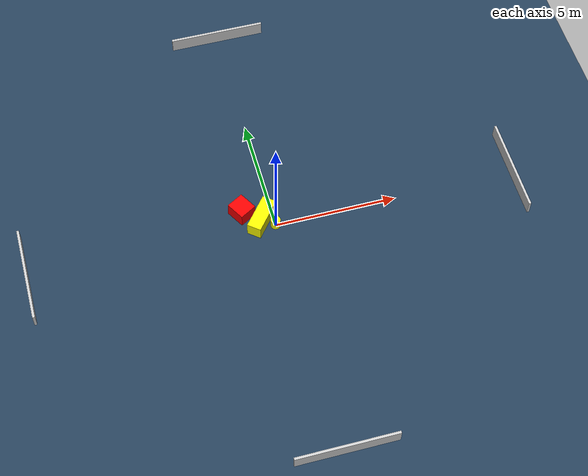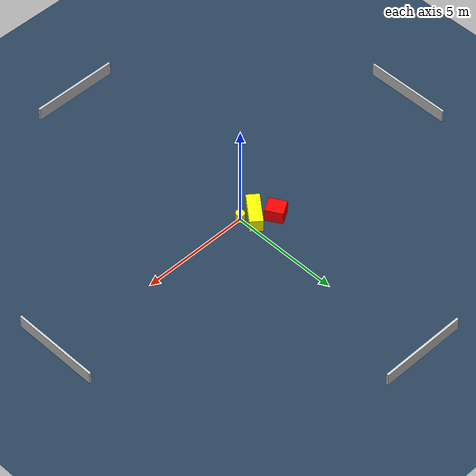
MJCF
<?xml version="1.0" ?>
<mujoco model="generated_environment">
  <option timestep="0.01" integrator="RK4" cone="elliptic"/>
  <default>
    <geom density="1"/>
  </default>
  <asset>
    <texture builtin="gradient" height="3072" name="skybox" rgb1="0.3 0.5 0.7" rgb2="0 0 0" type="skybox" width="512"/>
    <texture builtin="checker" height="300" name="groundplane" rgb1="0.2 0.3 0.4" rgb2="0.1 0.2 0.3" type="2d" width="300"/>
    <material name="groundplane" reflectance="0.2" texrepeat="5 5" texture="groundplane"/>
  </asset>
  <worldbody>
    <light dir="0 0 -1" directional="true" pos="0 0 1.5"/>
    <geom condim="3" friction="0.5 0.005 0.001" material="groundplane" name="floor" pos="0 0 0" size="0 0 0.05" type="plane"/>
    <body name="walls">
      <geom name="wall_1" condim="4" pos="-10.0 0.0 0.3" rgba="0.800000011920929 0.800000011920929 0.800000011920929 1.0" size="0.05 2.0 0.3" type="box"/>
      <geom name="wall_2" condim="4" pos="10.0 0.0 0.3" rgba="0.800000011920929 0.800000011920929 0.800000011920929 1.0" size="0.05 2.0 0.3" type="box"/>
      <geom name="wall_3" condim="4" pos="0.0 -10.0 0.3" rgba="0.800000011920929 0.800000011920929 0.800000011920929 1.0" size="2.0 0.05 0.3" type="box"/>
      <geom name="wall_4" condim="4" pos="0.0 10.0 0.3" rgba="0.800000011920929 0.800000011920929 0.800000011920929 1.0" size="2.0 0.05 0.3" type="box"/>
    </body>
    <body name="robot">
      <joint name="joint_x" type="slide" pos="0 0 0" axis="1 0 0"/>
      <joint name="joint_y" type="slide" pos="0 0 0" axis="0 1 0"/>
      <geom name="robot" type="cylinder" pos="0.0 0.0 0.2" size="0.2 0.2 0.0" mass="5.0" friction="1.0 0.005 0.0001" condim="4" rgba="1.0 1.0 0.0 1.0"/>
    </body>
    <body name="obstacle_1_movable">
      <geom name="obstacle_1_movable" condim="4" pos="-0.48339697874579557 0.33342376190196377 0.3" euler="0 0 140.99625939989176" friction="0.0 0.005 0.001" rgba="1.0 1.0 0.0 1.0" size="0.29134871784831784 0.7552299744503046 0.3" type="box" mass="0.1"/>
      <joint type="free"/>
    </body>
    <body name="obstacle_2_static">
      <geom name="obstacle_2_static" condim="4" pos="-1.1790834224315352 0.8682761997788025 0.3" euler="0 0 299.7755503502019" friction="0.0 0.005 0.001" rgba="1.0 0.0 0.0 1.0" size="0.40120048530260033 0.3705802862675086 0.3" type="box"/>
    </body>
  </worldbody>
  <actuator>
    <motor name="actuator_x" joint="joint_x" gear="1" ctrlrange="-1 1"/>
    <motor name="actuator_y" joint="joint_y" gear="1" ctrlrange="-1 1"/>
  </actuator>
</mujoco>
